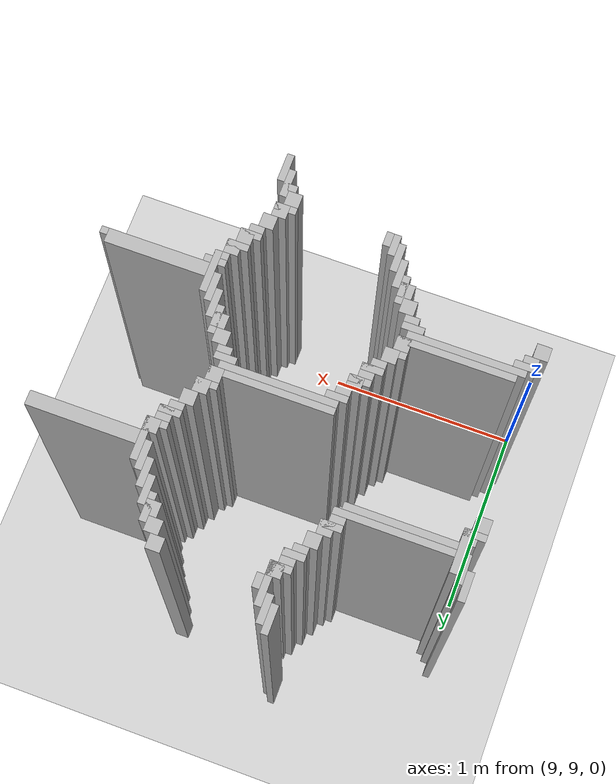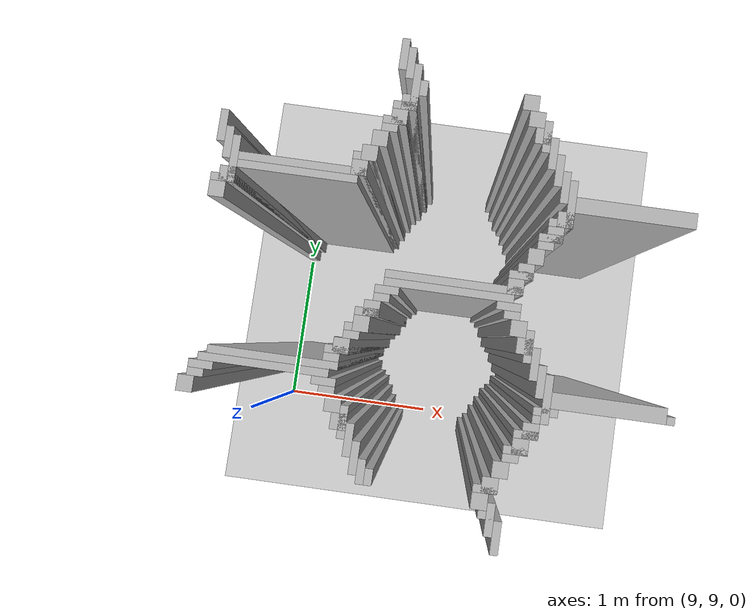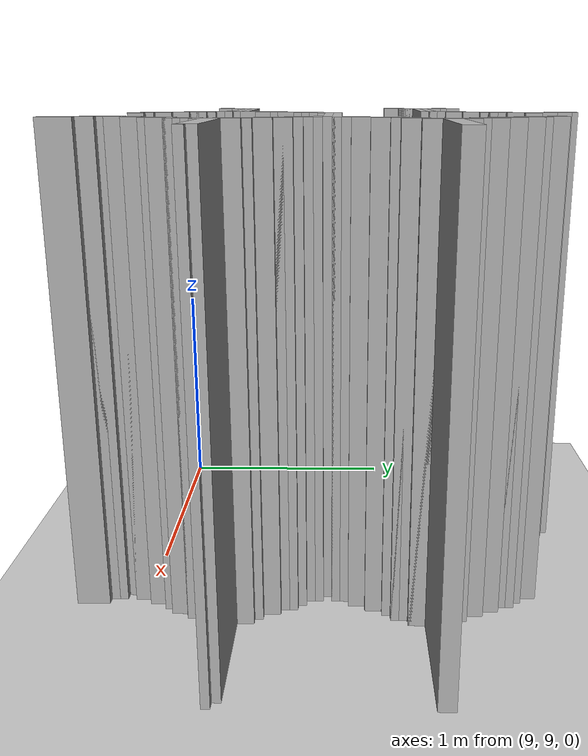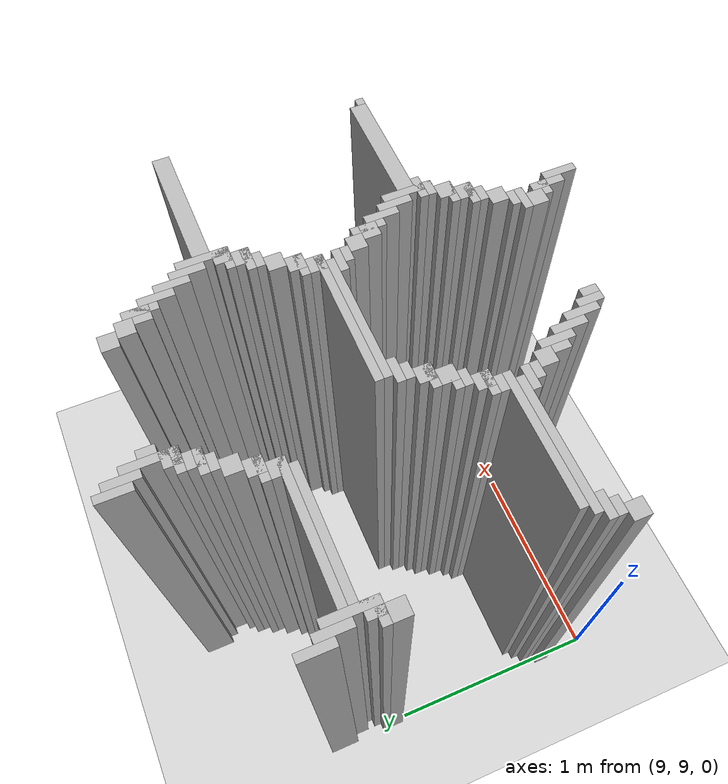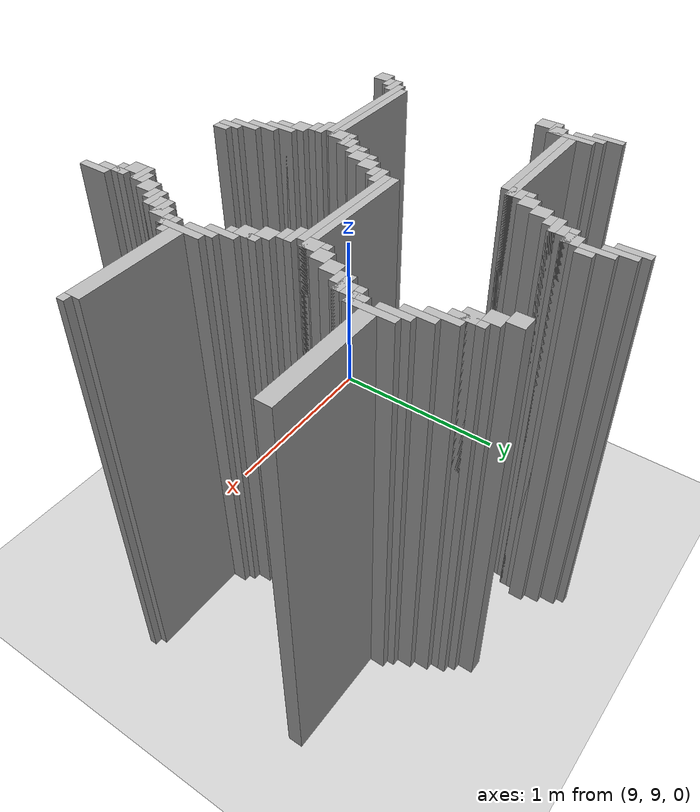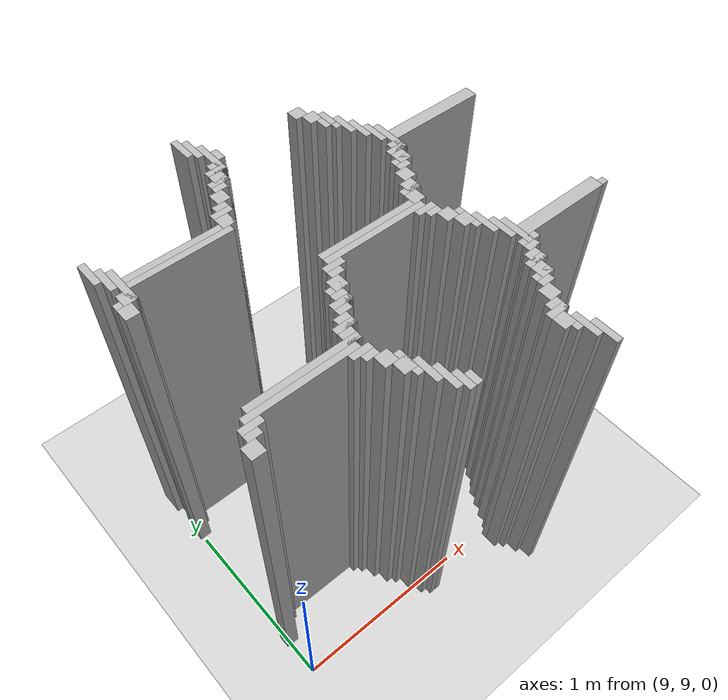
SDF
<sdf version="1.6">
 <world name="slam_world">
  <model name="ground_plane">
   <static>true</static>
   <link name="link">
    <collision name="collision">
     <geometry><plane><normal>0 0 1</normal><size>100 100</size></plane></geometry>
    </collision>
    <visual name="visual">
     <geometry><plane><normal>0 0 1</normal><size>100 100</size></plane></geometry>
     <material>
      <ambient>0.8 0.8 0.8 1</ambient>
      <diffuse>0.8 0.8 0.8 1</diffuse>
      <specular>0.8 0.8 0.8 1</specular>
     </material>
    </visual>
   </link>
  </model>
  <model name="wall_2237">
   <static>true</static>
   <pose>9.72737819025522 10.754060324825986 1.0 0 0 0</pose>
   <link name="link">
    <collision name="collision">
     <geometry><box><size>0.03480278422273782 0.13921113689095127 2.0</size></box></geometry>
    </collision>
    <visual name="visual">
     <geometry><box><size>0.03480278422273782 0.13921113689095127 2.0</size></box></geometry>
     <material><ambient>0.5 0.5 0.5 1</ambient><diffuse>0.7 0.7 0.7 1</diffuse></material>
    </visual>
   </link>
  </model>
  <model name="wall_2252">
   <static>true</static>
   <pose>9.762180974477959 10.719257540603248 1.0 0 0 0</pose>
   <link name="link">
    <collision name="collision">
     <geometry><box><size>0.03480278422273782 0.13921113689095127 2.0</size></box></geometry>
    </collision>
    <visual name="visual">
     <geometry><box><size>0.03480278422273782 0.13921113689095127 2.0</size></box></geometry>
     <material><ambient>0.5 0.5 0.5 1</ambient><diffuse>0.7 0.7 0.7 1</diffuse></material>
    </visual>
   </link>
  </model>
  <model name="wall_2274">
   <static>true</static>
   <pose>9.796983758700696 10.614849187935034 1.0 0 0 0</pose>
   <link name="link">
    <collision name="collision">
     <geometry><box><size>0.03480278422273782 0.2088167053364269 2.0</size></box></geometry>
    </collision>
    <visual name="visual">
     <geometry><box><size>0.03480278422273782 0.2088167053364269 2.0</size></box></geometry>
     <material><ambient>0.5 0.5 0.5 1</ambient><diffuse>0.7 0.7 0.7 1</diffuse></material>
    </visual>
   </link>
  </model>
  <model name="wall_2296">
   <static>true</static>
   <pose>9.831786542923433 10.614849187935034 1.0 0 0 0</pose>
   <link name="link">
    <collision name="collision">
     <geometry><box><size>0.03480278422273782 0.06960556844547564 2.0</size></box></geometry>
    </collision>
    <visual name="visual">
     <geometry><box><size>0.03480278422273782 0.06960556844547564 2.0</size></box></geometry>
     <material><ambient>0.5 0.5 0.5 1</ambient><diffuse>0.7 0.7 0.7 1</diffuse></material>
    </visual>
   </link>
  </model>
  <model name="wall_2297">
   <static>true</static>
   <pose>10.301624129930394 10.614849187935034 1.0 0 0 0</pose>
   <link name="link">
    <collision name="collision">
     <geometry><box><size>0.06960556844547564 0.06960556844547564 2.0</size></box></geometry>
    </collision>
    <visual name="visual">
     <geometry><box><size>0.06960556844547564 0.06960556844547564 2.0</size></box></geometry>
     <material><ambient>0.5 0.5 0.5 1</ambient><diffuse>0.7 0.7 0.7 1</diffuse></material>
    </visual>
   </link>
  </model>
  <model name="wall_2312">
   <static>true</static>
   <pose>9.779582366589327 10.54524361948956 1.0 0 0 0</pose>
   <link name="link">
    <collision name="collision">
     <geometry><box><size>0.06960556844547564 0.06960556844547564 2.0</size></box></geometry>
    </collision>
    <visual name="visual">
     <geometry><box><size>0.06960556844547564 0.06960556844547564 2.0</size></box></geometry>
     <material><ambient>0.5 0.5 0.5 1</ambient><diffuse>0.7 0.7 0.7 1</diffuse></material>
    </visual>
   </link>
  </model>
  <model name="wall_2313">
   <static>true</static>
   <pose>10.336426914153131 10.54524361948956 1.0 0 0 0</pose>
   <link name="link">
    <collision name="collision">
     <geometry><box><size>0.06960556844547564 0.06960556844547564 2.0</size></box></geometry>
    </collision>
    <visual name="visual">
     <geometry><box><size>0.06960556844547564 0.06960556844547564 2.0</size></box></geometry>
     <material><ambient>0.5 0.5 0.5 1</ambient><diffuse>0.7 0.7 0.7 1</diffuse></material>
    </visual>
   </link>
  </model>
  <model name="wall_2327">
   <static>true</static>
   <pose>9.762180974477959 10.52784222737819 1.0 0 0 0</pose>
   <link name="link">
    <collision name="collision">
     <geometry><box><size>0.10440835266821345 0.03480278422273782 2.0</size></box></geometry>
    </collision>
    <visual name="visual">
     <geometry><box><size>0.10440835266821345 0.03480278422273782 2.0</size></box></geometry>
     <material><ambient>0.5 0.5 0.5 1</ambient><diffuse>0.7 0.7 0.7 1</diffuse></material>
    </visual>
   </link>
  </model>
  <model name="wall_2328">
   <static>true</static>
   <pose>10.38863109048724 10.475638051044083 1.0 0 0 0</pose>
   <link name="link">
    <collision name="collision">
     <geometry><box><size>0.03480278422273782 0.13921113689095127 2.0</size></box></geometry>
    </collision>
    <visual name="visual">
     <geometry><box><size>0.03480278422273782 0.13921113689095127 2.0</size></box></geometry>
     <material><ambient>0.5 0.5 0.5 1</ambient><diffuse>0.7 0.7 0.7 1</diffuse></material>
    </visual>
   </link>
  </model>
  <model name="wall_2342">
   <static>true</static>
   <pose>9.744779582366588 10.475638051044083 1.0 0 0 0</pose>
   <link name="link">
    <collision name="collision">
     <geometry><box><size>0.06960556844547564 0.06960556844547564 2.0</size></box></geometry>
    </collision>
    <visual name="visual">
     <geometry><box><size>0.06960556844547564 0.06960556844547564 2.0</size></box></geometry>
     <material><ambient>0.5 0.5 0.5 1</ambient><diffuse>0.7 0.7 0.7 1</diffuse></material>
    </visual>
   </link>
  </model>
  <model name="wall_2343">
   <static>true</static>
   <pose>10.37122969837587 10.475638051044083 1.0 0 0 0</pose>
   <link name="link">
    <collision name="collision">
     <geometry><box><size>0.06960556844547564 0.06960556844547564 2.0</size></box></geometry>
    </collision>
    <visual name="visual">
     <geometry><box><size>0.06960556844547564 0.06960556844547564 2.0</size></box></geometry>
     <material><ambient>0.5 0.5 0.5 1</ambient><diffuse>0.7 0.7 0.7 1</diffuse></material>
    </visual>
   </link>
  </model>
  <model name="wall_2357">
   <static>true</static>
   <pose>9.72737819025522 10.458236658932714 1.0 0 0 0</pose>
   <link name="link">
    <collision name="collision">
     <geometry><box><size>0.10440835266821345 0.03480278422273782 2.0</size></box></geometry>
    </collision>
    <visual name="visual">
     <geometry><box><size>0.10440835266821345 0.03480278422273782 2.0</size></box></geometry>
     <material><ambient>0.5 0.5 0.5 1</ambient><diffuse>0.7 0.7 0.7 1</diffuse></material>
    </visual>
   </link>
  </model>
  <model name="wall_2358">
   <static>true</static>
   <pose>10.423433874709977 10.406032482598608 1.0 0 0 0</pose>
   <link name="link">
    <collision name="collision">
     <geometry><box><size>0.03480278422273782 0.13921113689095127 2.0</size></box></geometry>
    </collision>
    <visual name="visual">
     <geometry><box><size>0.03480278422273782 0.13921113689095127 2.0</size></box></geometry>
     <material><ambient>0.5 0.5 0.5 1</ambient><diffuse>0.7 0.7 0.7 1</diffuse></material>
    </visual>
   </link>
  </model>
  <model name="wall_2365">
   <static>true</static>
   <pose>9.70997679814385 10.423433874709977 1.0 0 0 0</pose>
   <link name="link">
    <collision name="collision">
     <geometry><box><size>0.06960556844547564 0.03480278422273782 2.0</size></box></geometry>
    </collision>
    <visual name="visual">
     <geometry><box><size>0.06960556844547564 0.03480278422273782 2.0</size></box></geometry>
     <material><ambient>0.5 0.5 0.5 1</ambient><diffuse>0.7 0.7 0.7 1</diffuse></material>
    </visual>
   </link>
  </model>
  <model name="wall_2376">
   <static>true</static>
   <pose>8.996519721577727 10.336426914153131 1.0 0 0 0</pose>
   <link name="link">
    <collision name="collision">
     <geometry><box><size>0.03480278422273782 0.13921113689095127 2.0</size></box></geometry>
    </collision>
    <visual name="visual">
     <geometry><box><size>0.03480278422273782 0.13921113689095127 2.0</size></box></geometry>
     <material><ambient>0.5 0.5 0.5 1</ambient><diffuse>0.7 0.7 0.7 1</diffuse></material>
    </visual>
   </link>
  </model>
  <model name="wall_2377">
   <static>true</static>
   <pose>9.675174013921113 10.37122969837587 1.0 0 0 0</pose>
   <link name="link">
    <collision name="collision">
     <geometry><box><size>0.06960556844547564 0.06960556844547564 2.0</size></box></geometry>
    </collision>
    <visual name="visual">
     <geometry><box><size>0.06960556844547564 0.06960556844547564 2.0</size></box></geometry>
     <material><ambient>0.5 0.5 0.5 1</ambient><diffuse>0.7 0.7 0.7 1</diffuse></material>
    </visual>
   </link>
  </model>
  <model name="wall_2378">
   <static>true</static>
   <pose>10.458236658932714 10.336426914153131 1.0 0 0 0</pose>
   <link name="link">
    <collision name="collision">
     <geometry><box><size>0.03480278422273782 0.13921113689095127 2.0</size></box></geometry>
    </collision>
    <visual name="visual">
     <geometry><box><size>0.03480278422273782 0.13921113689095127 2.0</size></box></geometry>
     <material><ambient>0.5 0.5 0.5 1</ambient><diffuse>0.7 0.7 0.7 1</diffuse></material>
    </visual>
   </link>
  </model>
  <model name="wall_2391">
   <static>true</static>
   <pose>9.031322505800464 10.266821345707656 1.0 0 0 0</pose>
   <link name="link">
    <collision name="collision">
     <geometry><box><size>0.03480278422273782 0.13921113689095127 2.0</size></box></geometry>
    </collision>
    <visual name="visual">
     <geometry><box><size>0.03480278422273782 0.13921113689095127 2.0</size></box></geometry>
     <material><ambient>0.5 0.5 0.5 1</ambient><diffuse>0.7 0.7 0.7 1</diffuse></material>
    </visual>
   </link>
  </model>
  <model name="wall_2392">
   <static>true</static>
   <pose>9.640371229698376 10.301624129930394 1.0 0 0 0</pose>
   <link name="link">
    <collision name="collision">
     <geometry><box><size>0.06960556844547564 0.06960556844547564 2.0</size></box></geometry>
    </collision>
    <visual name="visual">
     <geometry><box><size>0.06960556844547564 0.06960556844547564 2.0</size></box></geometry>
     <material><ambient>0.5 0.5 0.5 1</ambient><diffuse>0.7 0.7 0.7 1</diffuse></material>
    </visual>
   </link>
  </model>
  <model name="wall_2393">
   <static>true</static>
   <pose>10.493039443155451 10.266821345707656 1.0 0 0 0</pose>
   <link name="link">
    <collision name="collision">
     <geometry><box><size>0.03480278422273782 0.13921113689095127 2.0</size></box></geometry>
    </collision>
    <visual name="visual">
     <geometry><box><size>0.03480278422273782 0.13921113689095127 2.0</size></box></geometry>
     <material><ambient>0.5 0.5 0.5 1</ambient><diffuse>0.7 0.7 0.7 1</diffuse></material>
    </visual>
   </link>
  </model>
  <model name="wall_2406">
   <static>true</static>
   <pose>9.066125290023201 10.19721577726218 1.0 0 0 0</pose>
   <link name="link">
    <collision name="collision">
     <geometry><box><size>0.03480278422273782 0.2088167053364269 2.0</size></box></geometry>
    </collision>
    <visual name="visual">
     <geometry><box><size>0.03480278422273782 0.2088167053364269 2.0</size></box></geometry>
     <material><ambient>0.5 0.5 0.5 1</ambient><diffuse>0.7 0.7 0.7 1</diffuse></material>
    </visual>
   </link>
  </model>
  <model name="wall_2407">
   <static>true</static>
   <pose>9.622969837587007 10.284222737819025 1.0 0 0 0</pose>
   <link name="link">
    <collision name="collision">
     <geometry><box><size>0.10440835266821345 0.03480278422273782 2.0</size></box></geometry>
    </collision>
    <visual name="visual">
     <geometry><box><size>0.10440835266821345 0.03480278422273782 2.0</size></box></geometry>
     <material><ambient>0.5 0.5 0.5 1</ambient><diffuse>0.7 0.7 0.7 1</diffuse></material>
    </visual>
   </link>
  </model>
  <model name="wall_2408">
   <static>true</static>
   <pose>10.52784222737819 10.19721577726218 1.0 0 0 0</pose>
   <link name="link">
    <collision name="collision">
     <geometry><box><size>0.03480278422273782 0.2088167053364269 2.0</size></box></geometry>
    </collision>
    <visual name="visual">
     <geometry><box><size>0.03480278422273782 0.2088167053364269 2.0</size></box></geometry>
     <material><ambient>0.5 0.5 0.5 1</ambient><diffuse>0.7 0.7 0.7 1</diffuse></material>
    </visual>
   </link>
  </model>
  <model name="wall_2415">
   <static>true</static>
   <pose>9.605568445475638 10.232018561484919 1.0 0 0 0</pose>
   <link name="link">
    <collision name="collision">
     <geometry><box><size>0.06960556844547564 0.06960556844547564 2.0</size></box></geometry>
    </collision>
    <visual name="visual">
     <geometry><box><size>0.06960556844547564 0.06960556844547564 2.0</size></box></geometry>
     <material><ambient>0.5 0.5 0.5 1</ambient><diffuse>0.7 0.7 0.7 1</diffuse></material>
    </visual>
   </link>
  </model>
  <model name="wall_2427">
   <static>true</static>
   <pose>9.361948955916473 10.214617169373549 1.0 0 0 0</pose>
   <link name="link">
    <collision name="collision">
     <geometry><box><size>0.5568445475638051 0.03480278422273782 2.0</size></box></geometry>
    </collision>
    <visual name="visual">
     <geometry><box><size>0.5568445475638051 0.03480278422273782 2.0</size></box></geometry>
     <material><ambient>0.5 0.5 0.5 1</ambient><diffuse>0.7 0.7 0.7 1</diffuse></material>
    </visual>
   </link>
  </model>
  <model name="wall_2428">
   <static>true</static>
   <pose>10.806264501160092 10.19721577726218 1.0 0 0 0</pose>
   <link name="link">
    <collision name="collision">
     <geometry><box><size>0.5220417633410672 0.06960556844547564 2.0</size></box></geometry>
    </collision>
    <visual name="visual">
     <geometry><box><size>0.5220417633410672 0.06960556844547564 2.0</size></box></geometry>
     <material><ambient>0.5 0.5 0.5 1</ambient><diffuse>0.7 0.7 0.7 1</diffuse></material>
    </visual>
   </link>
  </model>
  <model name="wall_2436">
   <static>true</static>
   <pose>9.344547563805104 10.179814385150811 1.0 0 0 0</pose>
   <link name="link">
    <collision name="collision">
     <geometry><box><size>0.5220417633410672 0.03480278422273782 2.0</size></box></geometry>
    </collision>
    <visual name="visual">
     <geometry><box><size>0.5220417633410672 0.03480278422273782 2.0</size></box></geometry>
     <material><ambient>0.5 0.5 0.5 1</ambient><diffuse>0.7 0.7 0.7 1</diffuse></material>
    </visual>
   </link>
  </model>
  <model name="wall_2446">
   <static>true</static>
   <pose>9.048723897911833 10.127610208816705 1.0 0 0 0</pose>
   <link name="link">
    <collision name="collision">
     <geometry><box><size>0.06960556844547564 0.06960556844547564 2.0</size></box></geometry>
    </collision>
    <visual name="visual">
     <geometry><box><size>0.06960556844547564 0.06960556844547564 2.0</size></box></geometry>
     <material><ambient>0.5 0.5 0.5 1</ambient><diffuse>0.7 0.7 0.7 1</diffuse></material>
    </visual>
   </link>
  </model>
  <model name="wall_2447">
   <static>true</static>
   <pose>10.51044083526682 10.127610208816705 1.0 0 0 0</pose>
   <link name="link">
    <collision name="collision">
     <geometry><box><size>0.06960556844547564 0.06960556844547564 2.0</size></box></geometry>
    </collision>
    <visual name="visual">
     <geometry><box><size>0.06960556844547564 0.06960556844547564 2.0</size></box></geometry>
     <material><ambient>0.5 0.5 0.5 1</ambient><diffuse>0.7 0.7 0.7 1</diffuse></material>
    </visual>
   </link>
  </model>
  <model name="wall_2460">
   <static>true</static>
   <pose>9.031322505800464 10.110208816705336 1.0 0 0 0</pose>
   <link name="link">
    <collision name="collision">
     <geometry><box><size>0.10440835266821345 0.03480278422273782 2.0</size></box></geometry>
    </collision>
    <visual name="visual">
     <geometry><box><size>0.10440835266821345 0.03480278422273782 2.0</size></box></geometry>
     <material><ambient>0.5 0.5 0.5 1</ambient><diffuse>0.7 0.7 0.7 1</diffuse></material>
    </visual>
   </link>
  </model>
  <model name="wall_2461">
   <static>true</static>
   <pose>10.493039443155451 10.110208816705336 1.0 0 0 0</pose>
   <link name="link">
    <collision name="collision">
     <geometry><box><size>0.10440835266821345 0.03480278422273782 2.0</size></box></geometry>
    </collision>
    <visual name="visual">
     <geometry><box><size>0.10440835266821345 0.03480278422273782 2.0</size></box></geometry>
     <material><ambient>0.5 0.5 0.5 1</ambient><diffuse>0.7 0.7 0.7 1</diffuse></material>
    </visual>
   </link>
  </model>
  <model name="wall_2474">
   <static>true</static>
   <pose>9.013921113689095 10.058004640371228 1.0 0 0 0</pose>
   <link name="link">
    <collision name="collision">
     <geometry><box><size>0.06960556844547564 0.06960556844547564 2.0</size></box></geometry>
    </collision>
    <visual name="visual">
     <geometry><box><size>0.06960556844547564 0.06960556844547564 2.0</size></box></geometry>
     <material><ambient>0.5 0.5 0.5 1</ambient><diffuse>0.7 0.7 0.7 1</diffuse></material>
    </visual>
   </link>
  </model>
  <model name="wall_2475">
   <static>true</static>
   <pose>10.475638051044083 10.058004640371228 1.0 0 0 0</pose>
   <link name="link">
    <collision name="collision">
     <geometry><box><size>0.06960556844547564 0.06960556844547564 2.0</size></box></geometry>
    </collision>
    <visual name="visual">
     <geometry><box><size>0.06960556844547564 0.06960556844547564 2.0</size></box></geometry>
     <material><ambient>0.5 0.5 0.5 1</ambient><diffuse>0.7 0.7 0.7 1</diffuse></material>
    </visual>
   </link>
  </model>
  <model name="wall_2489">
   <static>true</static>
   <pose>10.458236658932714 10.04060324825986 1.0 0 0 0</pose>
   <link name="link">
    <collision name="collision">
     <geometry><box><size>0.10440835266821345 0.03480278422273782 2.0</size></box></geometry>
    </collision>
    <visual name="visual">
     <geometry><box><size>0.10440835266821345 0.03480278422273782 2.0</size></box></geometry>
     <material><ambient>0.5 0.5 0.5 1</ambient><diffuse>0.7 0.7 0.7 1</diffuse></material>
    </visual>
   </link>
  </model>
  <model name="wall_2499">
   <static>true</static>
   <pose>10.440835266821345 10.005800464037122 1.0 0 0 0</pose>
   <link name="link">
    <collision name="collision">
     <geometry><box><size>0.06960556844547564 0.03480278422273782 2.0</size></box></geometry>
    </collision>
    <visual name="visual">
     <geometry><box><size>0.06960556844547564 0.03480278422273782 2.0</size></box></geometry>
     <material><ambient>0.5 0.5 0.5 1</ambient><diffuse>0.7 0.7 0.7 1</diffuse></material>
    </visual>
   </link>
  </model>
  <model name="wall_2512">
   <static>true</static>
   <pose>10.406032482598608 9.953596287703016 1.0 0 0 0</pose>
   <link name="link">
    <collision name="collision">
     <geometry><box><size>0.06960556844547564 0.06960556844547564 2.0</size></box></geometry>
    </collision>
    <visual name="visual">
     <geometry><box><size>0.06960556844547564 0.06960556844547564 2.0</size></box></geometry>
     <material><ambient>0.5 0.5 0.5 1</ambient><diffuse>0.7 0.7 0.7 1</diffuse></material>
    </visual>
   </link>
  </model>
  <model name="wall_2526">
   <static>true</static>
   <pose>10.37122969837587 9.88399071925754 1.0 0 0 0</pose>
   <link name="link">
    <collision name="collision">
     <geometry><box><size>0.06960556844547564 0.06960556844547564 2.0</size></box></geometry>
    </collision>
    <visual name="visual">
     <geometry><box><size>0.06960556844547564 0.06960556844547564 2.0</size></box></geometry>
     <material><ambient>0.5 0.5 0.5 1</ambient><diffuse>0.7 0.7 0.7 1</diffuse></material>
    </visual>
   </link>
  </model>
  <model name="wall_2540">
   <static>true</static>
   <pose>10.3538283062645 9.86658932714617 1.0 0 0 0</pose>
   <link name="link">
    <collision name="collision">
     <geometry><box><size>0.10440835266821345 0.03480278422273782 2.0</size></box></geometry>
    </collision>
    <visual name="visual">
     <geometry><box><size>0.10440835266821345 0.03480278422273782 2.0</size></box></geometry>
     <material><ambient>0.5 0.5 0.5 1</ambient><diffuse>0.7 0.7 0.7 1</diffuse></material>
    </visual>
   </link>
  </model>
  <model name="wall_2550">
   <static>true</static>
   <pose>10.336426914153131 9.814385150812065 1.0 0 0 0</pose>
   <link name="link">
    <collision name="collision">
     <geometry><box><size>0.06960556844547564 0.06960556844547564 2.0</size></box></geometry>
    </collision>
    <visual name="visual">
     <geometry><box><size>0.06960556844547564 0.06960556844547564 2.0</size></box></geometry>
     <material><ambient>0.5 0.5 0.5 1</ambient><diffuse>0.7 0.7 0.7 1</diffuse></material>
    </visual>
   </link>
  </model>
  <model name="wall_2562">
   <static>true</static>
   <pose>10.075406032482599 9.796983758700696 1.0 0 0 0</pose>
   <link name="link">
    <collision name="collision">
     <geometry><box><size>0.5916473317865429 0.03480278422273782 2.0</size></box></geometry>
    </collision>
    <visual name="visual">
     <geometry><box><size>0.5916473317865429 0.03480278422273782 2.0</size></box></geometry>
     <material><ambient>0.5 0.5 0.5 1</ambient><diffuse>0.7 0.7 0.7 1</diffuse></material>
    </visual>
   </link>
  </model>
  <model name="wall_2571">
   <static>true</static>
   <pose>10.058004640371228 9.762180974477959 1.0 0 0 0</pose>
   <link name="link">
    <collision name="collision">
     <geometry><box><size>0.5568445475638051 0.03480278422273782 2.0</size></box></geometry>
    </collision>
    <visual name="visual">
     <geometry><box><size>0.5568445475638051 0.03480278422273782 2.0</size></box></geometry>
     <material><ambient>0.5 0.5 0.5 1</ambient><diffuse>0.7 0.7 0.7 1</diffuse></material>
    </visual>
   </link>
  </model>
  <model name="wall_2584">
   <static>true</static>
   <pose>9.796983758700696 9.72737819025522 1.0 0 0 0</pose>
   <link name="link">
    <collision name="collision">
     <geometry><box><size>0.10440835266821345 0.03480278422273782 2.0</size></box></geometry>
    </collision>
    <visual name="visual">
     <geometry><box><size>0.10440835266821345 0.03480278422273782 2.0</size></box></geometry>
     <material><ambient>0.5 0.5 0.5 1</ambient><diffuse>0.7 0.7 0.7 1</diffuse></material>
    </visual>
   </link>
  </model>
  <model name="wall_2585">
   <static>true</static>
   <pose>10.319025522041763 9.72737819025522 1.0 0 0 0</pose>
   <link name="link">
    <collision name="collision">
     <geometry><box><size>0.10440835266821345 0.03480278422273782 2.0</size></box></geometry>
    </collision>
    <visual name="visual">
     <geometry><box><size>0.10440835266821345 0.03480278422273782 2.0</size></box></geometry>
     <material><ambient>0.5 0.5 0.5 1</ambient><diffuse>0.7 0.7 0.7 1</diffuse></material>
    </visual>
   </link>
  </model>
  <model name="wall_2595">
   <static>true</static>
   <pose>9.779582366589327 9.692575406032482 1.0 0 0 0</pose>
   <link name="link">
    <collision name="collision">
     <geometry><box><size>0.06960556844547564 0.03480278422273782 2.0</size></box></geometry>
    </collision>
    <visual name="visual">
     <geometry><box><size>0.06960556844547564 0.03480278422273782 2.0</size></box></geometry>
     <material><ambient>0.5 0.5 0.5 1</ambient><diffuse>0.7 0.7 0.7 1</diffuse></material>
    </visual>
   </link>
  </model>
  <model name="wall_2596">
   <static>true</static>
   <pose>10.336426914153131 9.692575406032482 1.0 0 0 0</pose>
   <link name="link">
    <collision name="collision">
     <geometry><box><size>0.06960556844547564 0.03480278422273782 2.0</size></box></geometry>
    </collision>
    <visual name="visual">
     <geometry><box><size>0.06960556844547564 0.03480278422273782 2.0</size></box></geometry>
     <material><ambient>0.5 0.5 0.5 1</ambient><diffuse>0.7 0.7 0.7 1</diffuse></material>
    </visual>
   </link>
  </model>
  <model name="wall_2609">
   <static>true</static>
   <pose>9.744779582366588 9.640371229698376 1.0 0 0 0</pose>
   <link name="link">
    <collision name="collision">
     <geometry><box><size>0.06960556844547564 0.06960556844547564 2.0</size></box></geometry>
    </collision>
    <visual name="visual">
     <geometry><box><size>0.06960556844547564 0.06960556844547564 2.0</size></box></geometry>
     <material><ambient>0.5 0.5 0.5 1</ambient><diffuse>0.7 0.7 0.7 1</diffuse></material>
    </visual>
   </link>
  </model>
  <model name="wall_2610">
   <static>true</static>
   <pose>10.37122969837587 9.640371229698376 1.0 0 0 0</pose>
   <link name="link">
    <collision name="collision">
     <geometry><box><size>0.06960556844547564 0.06960556844547564 2.0</size></box></geometry>
    </collision>
    <visual name="visual">
     <geometry><box><size>0.06960556844547564 0.06960556844547564 2.0</size></box></geometry>
     <material><ambient>0.5 0.5 0.5 1</ambient><diffuse>0.7 0.7 0.7 1</diffuse></material>
    </visual>
   </link>
  </model>
  <model name="wall_2623">
   <static>true</static>
   <pose>9.72737819025522 9.622969837587007 1.0 0 0 0</pose>
   <link name="link">
    <collision name="collision">
     <geometry><box><size>0.10440835266821345 0.03480278422273782 2.0</size></box></geometry>
    </collision>
    <visual name="visual">
     <geometry><box><size>0.10440835266821345 0.03480278422273782 2.0</size></box></geometry>
     <material><ambient>0.5 0.5 0.5 1</ambient><diffuse>0.7 0.7 0.7 1</diffuse></material>
    </visual>
   </link>
  </model>
  <model name="wall_2624">
   <static>true</static>
   <pose>10.423433874709977 9.5707656612529 1.0 0 0 0</pose>
   <link name="link">
    <collision name="collision">
     <geometry><box><size>0.03480278422273782 0.13921113689095127 2.0</size></box></geometry>
    </collision>
    <visual name="visual">
     <geometry><box><size>0.03480278422273782 0.13921113689095127 2.0</size></box></geometry>
     <material><ambient>0.5 0.5 0.5 1</ambient><diffuse>0.7 0.7 0.7 1</diffuse></material>
    </visual>
   </link>
  </model>
  <model name="wall_2637">
   <static>true</static>
   <pose>9.70997679814385 9.5707656612529 1.0 0 0 0</pose>
   <link name="link">
    <collision name="collision">
     <geometry><box><size>0.06960556844547564 0.06960556844547564 2.0</size></box></geometry>
    </collision>
    <visual name="visual">
     <geometry><box><size>0.06960556844547564 0.06960556844547564 2.0</size></box></geometry>
     <material><ambient>0.5 0.5 0.5 1</ambient><diffuse>0.7 0.7 0.7 1</diffuse></material>
    </visual>
   </link>
  </model>
  <model name="wall_2638">
   <static>true</static>
   <pose>10.406032482598608 9.5707656612529 1.0 0 0 0</pose>
   <link name="link">
    <collision name="collision">
     <geometry><box><size>0.06960556844547564 0.06960556844547564 2.0</size></box></geometry>
    </collision>
    <visual name="visual">
     <geometry><box><size>0.06960556844547564 0.06960556844547564 2.0</size></box></geometry>
     <material><ambient>0.5 0.5 0.5 1</ambient><diffuse>0.7 0.7 0.7 1</diffuse></material>
    </visual>
   </link>
  </model>
  <model name="wall_2651">
   <static>true</static>
   <pose>9.692575406032482 9.55336426914153 1.0 0 0 0</pose>
   <link name="link">
    <collision name="collision">
     <geometry><box><size>0.10440835266821345 0.03480278422273782 2.0</size></box></geometry>
    </collision>
    <visual name="visual">
     <geometry><box><size>0.10440835266821345 0.03480278422273782 2.0</size></box></geometry>
     <material><ambient>0.5 0.5 0.5 1</ambient><diffuse>0.7 0.7 0.7 1</diffuse></material>
    </visual>
   </link>
  </model>
  <model name="wall_2652">
   <static>true</static>
   <pose>10.458236658932714 9.501160092807424 1.0 0 0 0</pose>
   <link name="link">
    <collision name="collision">
     <geometry><box><size>0.03480278422273782 0.13921113689095127 2.0</size></box></geometry>
    </collision>
    <visual name="visual">
     <geometry><box><size>0.03480278422273782 0.13921113689095127 2.0</size></box></geometry>
     <material><ambient>0.5 0.5 0.5 1</ambient><diffuse>0.7 0.7 0.7 1</diffuse></material>
    </visual>
   </link>
  </model>
  <model name="wall_2660">
   <static>true</static>
   <pose>9.675174013921113 9.518561484918793 1.0 0 0 0</pose>
   <link name="link">
    <collision name="collision">
     <geometry><box><size>0.06960556844547564 0.03480278422273782 2.0</size></box></geometry>
    </collision>
    <visual name="visual">
     <geometry><box><size>0.06960556844547564 0.03480278422273782 2.0</size></box></geometry>
     <material><ambient>0.5 0.5 0.5 1</ambient><diffuse>0.7 0.7 0.7 1</diffuse></material>
    </visual>
   </link>
  </model>
  <model name="wall_2670">
   <static>true</static>
   <pose>9.640371229698376 9.466357308584687 1.0 0 0 0</pose>
   <link name="link">
    <collision name="collision">
     <geometry><box><size>0.06960556844547564 0.06960556844547564 2.0</size></box></geometry>
    </collision>
    <visual name="visual">
     <geometry><box><size>0.06960556844547564 0.06960556844547564 2.0</size></box></geometry>
     <material><ambient>0.5 0.5 0.5 1</ambient><diffuse>0.7 0.7 0.7 1</diffuse></material>
    </visual>
   </link>
  </model>
  <model name="wall_2671">
   <static>true</static>
   <pose>10.493039443155451 9.431554524361948 1.0 0 0 0</pose>
   <link name="link">
    <collision name="collision">
     <geometry><box><size>0.03480278422273782 0.13921113689095127 2.0</size></box></geometry>
    </collision>
    <visual name="visual">
     <geometry><box><size>0.03480278422273782 0.13921113689095127 2.0</size></box></geometry>
     <material><ambient>0.5 0.5 0.5 1</ambient><diffuse>0.7 0.7 0.7 1</diffuse></material>
    </visual>
   </link>
  </model>
  <model name="wall_2684">
   <static>true</static>
   <pose>9.622969837587007 9.448955916473318 1.0 0 0 0</pose>
   <link name="link">
    <collision name="collision">
     <geometry><box><size>0.10440835266821345 0.03480278422273782 2.0</size></box></geometry>
    </collision>
    <visual name="visual">
     <geometry><box><size>0.10440835266821345 0.03480278422273782 2.0</size></box></geometry>
     <material><ambient>0.5 0.5 0.5 1</ambient><diffuse>0.7 0.7 0.7 1</diffuse></material>
    </visual>
   </link>
  </model>
  <model name="wall_2685">
   <static>true</static>
   <pose>10.52784222737819 9.361948955916473 1.0 0 0 0</pose>
   <link name="link">
    <collision name="collision">
     <geometry><box><size>0.03480278422273782 0.2088167053364269 2.0</size></box></geometry>
    </collision>
    <visual name="visual">
     <geometry><box><size>0.03480278422273782 0.2088167053364269 2.0</size></box></geometry>
     <material><ambient>0.5 0.5 0.5 1</ambient><diffuse>0.7 0.7 0.7 1</diffuse></material>
    </visual>
   </link>
  </model>
  <model name="wall_2693">
   <static>true</static>
   <pose>9.605568445475638 9.39675174013921 1.0 0 0 0</pose>
   <link name="link">
    <collision name="collision">
     <geometry><box><size>0.06960556844547564 0.06960556844547564 2.0</size></box></geometry>
    </collision>
    <visual name="visual">
     <geometry><box><size>0.06960556844547564 0.06960556844547564 2.0</size></box></geometry>
     <material><ambient>0.5 0.5 0.5 1</ambient><diffuse>0.7 0.7 0.7 1</diffuse></material>
    </visual>
   </link>
  </model>
  <model name="wall_2702">
   <static>true</static>
   <pose>9.361948955916473 9.379350348027842 1.0 0 0 0</pose>
   <link name="link">
    <collision name="collision">
     <geometry><box><size>0.5568445475638051 0.03480278422273782 2.0</size></box></geometry>
    </collision>
    <visual name="visual">
     <geometry><box><size>0.5568445475638051 0.03480278422273782 2.0</size></box></geometry>
     <material><ambient>0.5 0.5 0.5 1</ambient><diffuse>0.7 0.7 0.7 1</diffuse></material>
    </visual>
   </link>
  </model>
  <model name="wall_2703">
   <static>true</static>
   <pose>10.788863109048723 9.361948955916473 1.0 0 0 0</pose>
   <link name="link">
    <collision name="collision">
     <geometry><box><size>0.4872389791183295 0.06960556844547564 2.0</size></box></geometry>
    </collision>
    <visual name="visual">
     <geometry><box><size>0.4872389791183295 0.06960556844547564 2.0</size></box></geometry>
     <material><ambient>0.5 0.5 0.5 1</ambient><diffuse>0.7 0.7 0.7 1</diffuse></material>
    </visual>
   </link>
  </model>
  <model name="wall_2713">
   <static>true</static>
   <pose>9.327146171693736 9.344547563805104 1.0 0 0 0</pose>
   <link name="link">
    <collision name="collision">
     <geometry><box><size>0.5568445475638051 0.03480278422273782 2.0</size></box></geometry>
    </collision>
    <visual name="visual">
     <geometry><box><size>0.5568445475638051 0.03480278422273782 2.0</size></box></geometry>
     <material><ambient>0.5 0.5 0.5 1</ambient><diffuse>0.7 0.7 0.7 1</diffuse></material>
    </visual>
   </link>
  </model>
  <model name="wall_2714">
   <static>true</static>
   <pose>11.049883990719257 9.344547563805104 1.0 0 0 0</pose>
   <link name="link">
    <collision name="collision">
     <geometry><box><size>0.03480278422273782 0.03480278422273782 2.0</size></box></geometry>
    </collision>
    <visual name="visual">
     <geometry><box><size>0.03480278422273782 0.03480278422273782 2.0</size></box></geometry>
     <material><ambient>0.5 0.5 0.5 1</ambient><diffuse>0.7 0.7 0.7 1</diffuse></material>
    </visual>
   </link>
  </model>
  <model name="wall_2726">
   <static>true</static>
   <pose>9.066125290023201 9.309744779582367 1.0 0 0 0</pose>
   <link name="link">
    <collision name="collision">
     <geometry><box><size>0.10440835266821345 0.03480278422273782 2.0</size></box></geometry>
    </collision>
    <visual name="visual">
     <geometry><box><size>0.10440835266821345 0.03480278422273782 2.0</size></box></geometry>
     <material><ambient>0.5 0.5 0.5 1</ambient><diffuse>0.7 0.7 0.7 1</diffuse></material>
    </visual>
   </link>
  </model>
  <model name="wall_2727">
   <static>true</static>
   <pose>9.588167053364268 9.309744779582367 1.0 0 0 0</pose>
   <link name="link">
    <collision name="collision">
     <geometry><box><size>0.10440835266821345 0.03480278422273782 2.0</size></box></geometry>
    </collision>
    <visual name="visual">
     <geometry><box><size>0.10440835266821345 0.03480278422273782 2.0</size></box></geometry>
     <material><ambient>0.5 0.5 0.5 1</ambient><diffuse>0.7 0.7 0.7 1</diffuse></material>
    </visual>
   </link>
  </model>
  <model name="wall_2728">
   <static>true</static>
   <pose>10.52784222737819 9.309744779582367 1.0 0 0 0</pose>
   <link name="link">
    <collision name="collision">
     <geometry><box><size>0.10440835266821345 0.03480278422273782 2.0</size></box></geometry>
    </collision>
    <visual name="visual">
     <geometry><box><size>0.10440835266821345 0.03480278422273782 2.0</size></box></geometry>
     <material><ambient>0.5 0.5 0.5 1</ambient><diffuse>0.7 0.7 0.7 1</diffuse></material>
    </visual>
   </link>
  </model>
  <model name="wall_2740">
   <static>true</static>
   <pose>9.048723897911833 9.274941995359628 1.0 0 0 0</pose>
   <link name="link">
    <collision name="collision">
     <geometry><box><size>0.06960556844547564 0.03480278422273782 2.0</size></box></geometry>
    </collision>
    <visual name="visual">
     <geometry><box><size>0.06960556844547564 0.03480278422273782 2.0</size></box></geometry>
     <material><ambient>0.5 0.5 0.5 1</ambient><diffuse>0.7 0.7 0.7 1</diffuse></material>
    </visual>
   </link>
  </model>
  <model name="wall_2741">
   <static>true</static>
   <pose>9.605568445475638 9.274941995359628 1.0 0 0 0</pose>
   <link name="link">
    <collision name="collision">
     <geometry><box><size>0.06960556844547564 0.03480278422273782 2.0</size></box></geometry>
    </collision>
    <visual name="visual">
     <geometry><box><size>0.06960556844547564 0.03480278422273782 2.0</size></box></geometry>
     <material><ambient>0.5 0.5 0.5 1</ambient><diffuse>0.7 0.7 0.7 1</diffuse></material>
    </visual>
   </link>
  </model>
  <model name="wall_2742">
   <static>true</static>
   <pose>10.51044083526682 9.274941995359628 1.0 0 0 0</pose>
   <link name="link">
    <collision name="collision">
     <geometry><box><size>0.06960556844547564 0.03480278422273782 2.0</size></box></geometry>
    </collision>
    <visual name="visual">
     <geometry><box><size>0.06960556844547564 0.03480278422273782 2.0</size></box></geometry>
     <material><ambient>0.5 0.5 0.5 1</ambient><diffuse>0.7 0.7 0.7 1</diffuse></material>
    </visual>
   </link>
  </model>
  <model name="wall_2755">
   <static>true</static>
   <pose>9.013921113689095 9.222737819025522 1.0 0 0 0</pose>
   <link name="link">
    <collision name="collision">
     <geometry><box><size>0.06960556844547564 0.06960556844547564 2.0</size></box></geometry>
    </collision>
    <visual name="visual">
     <geometry><box><size>0.06960556844547564 0.06960556844547564 2.0</size></box></geometry>
     <material><ambient>0.5 0.5 0.5 1</ambient><diffuse>0.7 0.7 0.7 1</diffuse></material>
    </visual>
   </link>
  </model>
  <model name="wall_2756">
   <static>true</static>
   <pose>9.640371229698376 9.222737819025522 1.0 0 0 0</pose>
   <link name="link">
    <collision name="collision">
     <geometry><box><size>0.06960556844547564 0.06960556844547564 2.0</size></box></geometry>
    </collision>
    <visual name="visual">
     <geometry><box><size>0.06960556844547564 0.06960556844547564 2.0</size></box></geometry>
     <material><ambient>0.5 0.5 0.5 1</ambient><diffuse>0.7 0.7 0.7 1</diffuse></material>
    </visual>
   </link>
  </model>
  <model name="wall_2757">
   <static>true</static>
   <pose>10.475638051044083 9.222737819025522 1.0 0 0 0</pose>
   <link name="link">
    <collision name="collision">
     <geometry><box><size>0.06960556844547564 0.06960556844547564 2.0</size></box></geometry>
    </collision>
    <visual name="visual">
     <geometry><box><size>0.06960556844547564 0.06960556844547564 2.0</size></box></geometry>
     <material><ambient>0.5 0.5 0.5 1</ambient><diffuse>0.7 0.7 0.7 1</diffuse></material>
    </visual>
   </link>
  </model>
  <model name="wall_2772">
   <static>true</static>
   <pose>9.692575406032482 9.153132250580047 1.0 0 0 0</pose>
   <link name="link">
    <collision name="collision">
     <geometry><box><size>0.03480278422273782 0.13921113689095127 2.0</size></box></geometry>
    </collision>
    <visual name="visual">
     <geometry><box><size>0.03480278422273782 0.13921113689095127 2.0</size></box></geometry>
     <material><ambient>0.5 0.5 0.5 1</ambient><diffuse>0.7 0.7 0.7 1</diffuse></material>
    </visual>
   </link>
  </model>
  <model name="wall_2773">
   <static>true</static>
   <pose>10.458236658932714 9.205336426914153 1.0 0 0 0</pose>
   <link name="link">
    <collision name="collision">
     <geometry><box><size>0.10440835266821345 0.03480278422273782 2.0</size></box></geometry>
    </collision>
    <visual name="visual">
     <geometry><box><size>0.10440835266821345 0.03480278422273782 2.0</size></box></geometry>
     <material><ambient>0.5 0.5 0.5 1</ambient><diffuse>0.7 0.7 0.7 1</diffuse></material>
    </visual>
   </link>
  </model>
  <model name="wall_2786">
   <static>true</static>
   <pose>9.675174013921113 9.153132250580047 1.0 0 0 0</pose>
   <link name="link">
    <collision name="collision">
     <geometry><box><size>0.06960556844547564 0.06960556844547564 2.0</size></box></geometry>
    </collision>
    <visual name="visual">
     <geometry><box><size>0.06960556844547564 0.06960556844547564 2.0</size></box></geometry>
     <material><ambient>0.5 0.5 0.5 1</ambient><diffuse>0.7 0.7 0.7 1</diffuse></material>
    </visual>
   </link>
  </model>
  <model name="wall_2787">
   <static>true</static>
   <pose>10.440835266821345 9.153132250580047 1.0 0 0 0</pose>
   <link name="link">
    <collision name="collision">
     <geometry><box><size>0.06960556844547564 0.06960556844547564 2.0</size></box></geometry>
    </collision>
    <visual name="visual">
     <geometry><box><size>0.06960556844547564 0.06960556844547564 2.0</size></box></geometry>
     <material><ambient>0.5 0.5 0.5 1</ambient><diffuse>0.7 0.7 0.7 1</diffuse></material>
    </visual>
   </link>
  </model>
  <model name="wall_2800">
   <static>true</static>
   <pose>9.72737819025522 9.08352668213457 1.0 0 0 0</pose>
   <link name="link">
    <collision name="collision">
     <geometry><box><size>0.03480278422273782 0.13921113689095127 2.0</size></box></geometry>
    </collision>
    <visual name="visual">
     <geometry><box><size>0.03480278422273782 0.13921113689095127 2.0</size></box></geometry>
     <material><ambient>0.5 0.5 0.5 1</ambient><diffuse>0.7 0.7 0.7 1</diffuse></material>
    </visual>
   </link>
  </model>
  <model name="wall_2801">
   <static>true</static>
   <pose>10.423433874709977 9.135730858468676 1.0 0 0 0</pose>
   <link name="link">
    <collision name="collision">
     <geometry><box><size>0.10440835266821345 0.03480278422273782 2.0</size></box></geometry>
    </collision>
    <visual name="visual">
     <geometry><box><size>0.10440835266821345 0.03480278422273782 2.0</size></box></geometry>
     <material><ambient>0.5 0.5 0.5 1</ambient><diffuse>0.7 0.7 0.7 1</diffuse></material>
    </visual>
   </link>
  </model>
  <model name="wall_2812">
   <static>true</static>
   <pose>10.406032482598608 9.100928074245939 1.0 0 0 0</pose>
   <link name="link">
    <collision name="collision">
     <geometry><box><size>0.06960556844547564 0.03480278422273782 2.0</size></box></geometry>
    </collision>
    <visual name="visual">
     <geometry><box><size>0.06960556844547564 0.03480278422273782 2.0</size></box></geometry>
     <material><ambient>0.5 0.5 0.5 1</ambient><diffuse>0.7 0.7 0.7 1</diffuse></material>
    </visual>
   </link>
  </model>
  <model name="wall_2825">
   <static>true</static>
   <pose>9.762180974477959 9.013921113689095 1.0 0 0 0</pose>
   <link name="link">
    <collision name="collision">
     <geometry><box><size>0.03480278422273782 0.13921113689095127 2.0</size></box></geometry>
    </collision>
    <visual name="visual">
     <geometry><box><size>0.03480278422273782 0.13921113689095127 2.0</size></box></geometry>
     <material><ambient>0.5 0.5 0.5 1</ambient><diffuse>0.7 0.7 0.7 1</diffuse></material>
    </visual>
   </link>
  </model>
  <model name="wall_2826">
   <static>true</static>
   <pose>10.37122969837587 9.048723897911833 1.0 0 0 0</pose>
   <link name="link">
    <collision name="collision">
     <geometry><box><size>0.06960556844547564 0.06960556844547564 2.0</size></box></geometry>
    </collision>
    <visual name="visual">
     <geometry><box><size>0.06960556844547564 0.06960556844547564 2.0</size></box></geometry>
     <material><ambient>0.5 0.5 0.5 1</ambient><diffuse>0.7 0.7 0.7 1</diffuse></material>
    </visual>
   </link>
  </model>
  <model name="wall_2841">
   <static>true</static>
   <pose>9.796983758700696 8.961716937354987 1.0 0 0 0</pose>
   <link name="link">
    <collision name="collision">
     <geometry><box><size>0.03480278422273782 0.10440835266821345 2.0</size></box></geometry>
    </collision>
    <visual name="visual">
     <geometry><box><size>0.03480278422273782 0.10440835266821345 2.0</size></box></geometry>
     <material><ambient>0.5 0.5 0.5 1</ambient><diffuse>0.7 0.7 0.7 1</diffuse></material>
    </visual>
   </link>
  </model>
  <model name="wall_2842">
   <static>true</static>
   <pose>10.336426914153131 8.979118329466356 1.0 0 0 0</pose>
   <link name="link">
    <collision name="collision">
     <geometry><box><size>0.06960556844547564 0.06960556844547564 2.0</size></box></geometry>
    </collision>
    <visual name="visual">
     <geometry><box><size>0.06960556844547564 0.06960556844547564 2.0</size></box></geometry>
     <material><ambient>0.5 0.5 0.5 1</ambient><diffuse>0.7 0.7 0.7 1</diffuse></material>
    </visual>
   </link>
  </model>
  <model name="wall_2857">
   <static>true</static>
   <pose>9.831786542923433 8.944315545243619 1.0 0 0 0</pose>
   <link name="link">
    <collision name="collision">
     <geometry><box><size>0.03480278422273782 0.06960556844547564 2.0</size></box></geometry>
    </collision>
    <visual name="visual">
     <geometry><box><size>0.03480278422273782 0.06960556844547564 2.0</size></box></geometry>
     <material><ambient>0.5 0.5 0.5 1</ambient><diffuse>0.7 0.7 0.7 1</diffuse></material>
    </visual>
   </link>
  </model>
  <model name="wall_2858">
   <static>true</static>
   <pose>10.319025522041763 8.961716937354987 1.0 0 0 0</pose>
   <link name="link">
    <collision name="collision">
     <geometry><box><size>0.10440835266821345 0.03480278422273782 2.0</size></box></geometry>
    </collision>
    <visual name="visual">
     <geometry><box><size>0.10440835266821345 0.03480278422273782 2.0</size></box></geometry>
     <material><ambient>0.5 0.5 0.5 1</ambient><diffuse>0.7 0.7 0.7 1</diffuse></material>
    </visual>
   </link>
  </model>
  <model name="wall_2870">
   <static>true</static>
   <pose>10.301624129930394 8.909512761020881 1.0 0 0 0</pose>
   <link name="link">
    <collision name="collision">
     <geometry><box><size>0.06960556844547564 0.06960556844547564 2.0</size></box></geometry>
    </collision>
    <visual name="visual">
     <geometry><box><size>0.06960556844547564 0.06960556844547564 2.0</size></box></geometry>
     <material><ambient>0.5 0.5 0.5 1</ambient><diffuse>0.7 0.7 0.7 1</diffuse></material>
    </visual>
   </link>
  </model>
  <model name="wall_2886">
   <static>true</static>
   <pose>10.3538283062645 8.839907192575406 1.0 0 0 0</pose>
   <link name="link">
    <collision name="collision">
     <geometry><box><size>0.03480278422273782 0.13921113689095127 2.0</size></box></geometry>
    </collision>
    <visual name="visual">
     <geometry><box><size>0.03480278422273782 0.13921113689095127 2.0</size></box></geometry>
     <material><ambient>0.5 0.5 0.5 1</ambient><diffuse>0.7 0.7 0.7 1</diffuse></material>
    </visual>
   </link>
  </model>
  <model name="wall_2901">
   <static>true</static>
   <pose>10.336426914153131 8.857308584686775 1.0 0 0 0</pose>
   <link name="link">
    <collision name="collision">
     <geometry><box><size>0.06960556844547564 0.03480278422273782 2.0</size></box></geometry>
    </collision>
    <visual name="visual">
     <geometry><box><size>0.06960556844547564 0.03480278422273782 2.0</size></box></geometry>
     <material><ambient>0.5 0.5 0.5 1</ambient><diffuse>0.7 0.7 0.7 1</diffuse></material>
    </visual>
   </link>
  </model>
  <model name="wall_2916">
   <static>true</static>
   <pose>10.38863109048724 8.77030162412993 1.0 0 0 0</pose>
   <link name="link">
    <collision name="collision">
     <geometry><box><size>0.03480278422273782 0.13921113689095127 2.0</size></box></geometry>
    </collision>
    <visual name="visual">
     <geometry><box><size>0.03480278422273782 0.13921113689095127 2.0</size></box></geometry>
     <material><ambient>0.5 0.5 0.5 1</ambient><diffuse>0.7 0.7 0.7 1</diffuse></material>
    </visual>
   </link>
  </model>
 </world>
</sdf>
